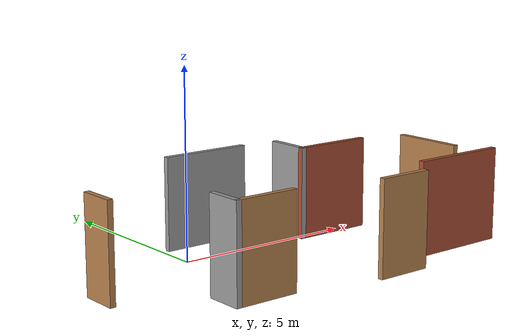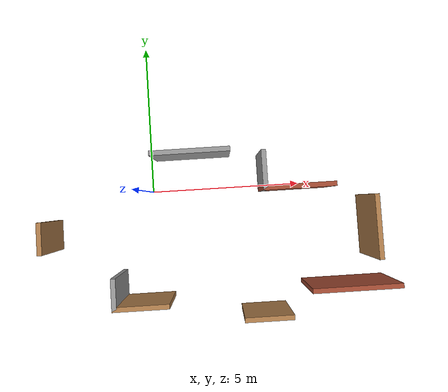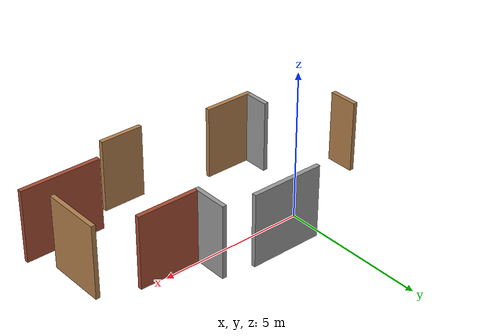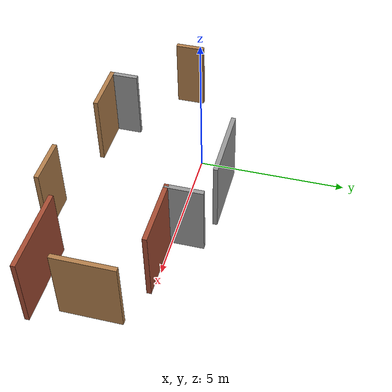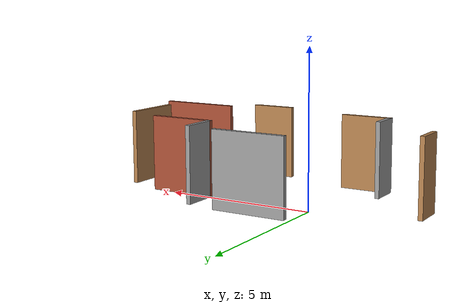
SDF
<?xml version='1.0'?>
<sdf version='1.7'>
  <model name='Untitled'>
    <pose>2.14924 -1.45295 0 0 -0 0</pose>
    <link name='Wall_0'>
      <collision name='Wall_0_Collision'>
        <geometry>
          <box>
            <size>1 0.15 2.5</size>
          </box>
        </geometry>
        <pose>0 0 1.25 0 -0 0</pose>
      </collision>
      <visual name='Wall_0_Visual'>
        <pose>0 0 1.25 0 -0 0</pose>
        <geometry>
          <box>
            <size>1 0.15 2.5</size>
          </box>
        </geometry>
        <material>
          <script>
            <uri>file://media/materials/scripts/gazebo.material</uri>
            <name>Gazebo/Wood</name>
          </script>
          <ambient>1 1 1 1</ambient>
        </material>
        <meta>
          <layer>0</layer>
        </meta>
      </visual>
      <pose>-5.41924 0.197955 0 0 -0 -1.5708</pose>
    </link>
    <link name='Wall_10'>
      <collision name='Wall_10_Collision'>
        <geometry>
          <box>
            <size>1.25 0.15 2.5</size>
          </box>
        </geometry>
        <pose>0 0 1.25 0 -0 0</pose>
      </collision>
      <visual name='Wall_10_Visual'>
        <pose>0 0 1.25 0 -0 0</pose>
        <geometry>
          <box>
            <size>1.25 0.15 2.5</size>
          </box>
        </geometry>
        <material>
          <script>
            <uri>file://media/materials/scripts/gazebo.material</uri>
            <name>Gazebo/Grey</name>
          </script>
          <ambient>1 1 1 1</ambient>
        </material>
        <meta>
          <layer>0</layer>
        </meta>
      </visual>
      <pose>1.54084 1.87888 0 0 -0 1.5708</pose>
    </link>
    <link name='Wall_12'>
      <collision name='Wall_12_Collision'>
        <geometry>
          <box>
            <size>2.5 0.15 2.5</size>
          </box>
        </geometry>
        <pose>0 0 1.25 0 -0 0</pose>
      </collision>
      <visual name='Wall_12_Visual'>
        <pose>0 0 1.25 0 -0 0</pose>
        <geometry>
          <box>
            <size>2.5 0.15 2.5</size>
          </box>
        </geometry>
        <material>
          <script>
            <uri>file://media/materials/scripts/gazebo.material</uri>
            <name>Gazebo/Grey</name>
          </script>
          <ambient>1 1 1 1</ambient>
        </material>
        <meta>
          <layer>0</layer>
        </meta>
      </visual>
      <pose>-0.721383 2.59848 0 0 -0 3.14159</pose>
    </link>
    <link name='Wall_14'>
      <collision name='Wall_14_Collision'>
        <geometry>
          <box>
            <size>1.5 0.15 2.5</size>
          </box>
        </geometry>
        <pose>0 0 1.25 0 -0 0</pose>
      </collision>
      <visual name='Wall_14_Visual'>
        <pose>0 0 1.25 0 -0 0</pose>
        <geometry>
          <box>
            <size>1.5 0.15 2.5</size>
          </box>
        </geometry>
        <material>
          <script>
            <uri>file://media/materials/scripts/gazebo.material</uri>
            <name>Gazebo/Wood</name>
          </script>
          <ambient>1 1 1 1</ambient>
        </material>
        <meta>
          <layer>0</layer>
        </meta>
      </visual>
      <pose>1.40222 -2.59848 0 0 -0 3.14159</pose>
    </link>
    <link name='Wall_2'>
      <collision name='Wall_2_Collision'>
        <geometry>
          <box>
            <size>2.75 0.15 2.5</size>
          </box>
        </geometry>
        <pose>0 0 1.25 0 -0 0</pose>
      </collision>
      <visual name='Wall_2_Visual'>
        <pose>0 0 1.25 0 -0 0</pose>
        <geometry>
          <box>
            <size>2.75 0.15 2.5</size>
          </box>
        </geometry>
        <material>
          <script>
            <uri>file://media/materials/scripts/gazebo.material</uri>
            <name>Gazebo/Bricks</name>
          </script>
          <ambient>1 1 1 1</ambient>
        </material>
        <meta>
          <layer>0</layer>
        </meta>
      </visual>
      <pose>4.11924 -1.86703 0 0 -0 3.14159</pose>
    </link>
    <link name='Wall_4'>
      <collision name='Wall_4_Collision'>
        <geometry>
          <box>
            <size>2 0.15 2.5</size>
          </box>
        </geometry>
        <pose>0 0 1.25 0 -0 0</pose>
      </collision>
      <visual name='Wall_4_Visual'>
        <pose>0 0 1.25 0 -0 0</pose>
        <geometry>
          <box>
            <size>2 0.15 2.5</size>
          </box>
        </geometry>
        <material>
          <script>
            <uri>file://media/materials/scripts/gazebo.material</uri>
            <name>Gazebo/Wood</name>
          </script>
          <ambient>1 1 1 1</ambient>
        </material>
        <meta>
          <layer>0</layer>
        </meta>
      </visual>
      <pose>4.90215 -0.059921 0 0 -0 1.5708</pose>
    </link>
    <link name='Wall_6'>
      <collision name='Wall_6_Collision'>
        <geometry>
          <box>
            <size>1.75 0.15 2.5</size>
          </box>
        </geometry>
        <pose>0 0 1.25 0 -0 0</pose>
      </collision>
      <visual name='Wall_6_Visual'>
        <pose>0 0 1.25 0 -0 0</pose>
        <geometry>
          <box>
            <size>1.75 0.15 2.5</size>
          </box>
        </geometry>
        <material>
          <script>
            <uri>file://media/materials/scripts/gazebo.material</uri>
            <name>Gazebo/Wood</name>
          </script>
          <ambient>1 1 1 1</ambient>
        </material>
        <meta>
          <layer>0</layer>
        </meta>
      </visual>
      <pose>-2.45282 -2.04953 0 0 -0 3.14159</pose>
    </link>
    <link name='Wall_7'>
      <collision name='Wall_7_Collision'>
        <geometry>
          <box>
            <size>1 0.15 2.5</size>
          </box>
        </geometry>
        <pose>0 0 1.25 0 -0 0</pose>
      </collision>
      <visual name='Wall_7_Visual'>
        <pose>0 0 1.25 0 -0 0</pose>
        <geometry>
          <box>
            <size>1 0.15 2.5</size>
          </box>
        </geometry>
        <material>
          <script>
            <uri>file://media/materials/scripts/gazebo.material</uri>
            <name>Gazebo/Grey</name>
          </script>
          <ambient>1 1 1 1</ambient>
        </material>
        <meta>
          <layer>0</layer>
        </meta>
      </visual>
      <pose>-3.25283 -1.62453 0 0 -0 1.5708</pose>
    </link>
    <link name='Wall_9'>
      <collision name='Wall_9_Collision'>
        <geometry>
          <box>
            <size>2.25 0.15 2.5</size>
          </box>
        </geometry>
        <pose>0 0 1.25 0 -0 0</pose>
      </collision>
      <visual name='Wall_9_Visual'>
        <pose>0 0 1.25 0 -0 0</pose>
        <geometry>
          <box>
            <size>2.25 0.15 2.5</size>
          </box>
        </geometry>
        <material>
          <script>
            <uri>file://media/materials/scripts/gazebo.material</uri>
            <name>Gazebo/Bricks</name>
          </script>
          <ambient>1 1 1 1</ambient>
        </material>
        <meta>
          <layer>0</layer>
        </meta>
      </visual>
      <pose>2.59084 1.32888 0 0 -0 3.14159</pose>
    </link>
    <static>1</static>
  </model>
</sdf>
